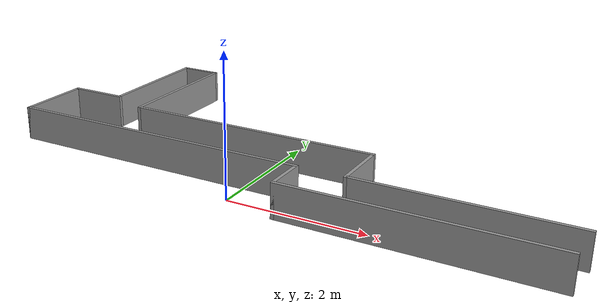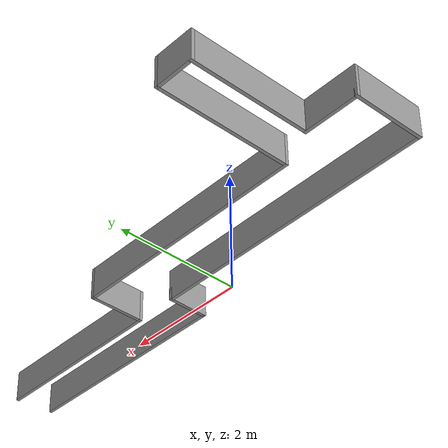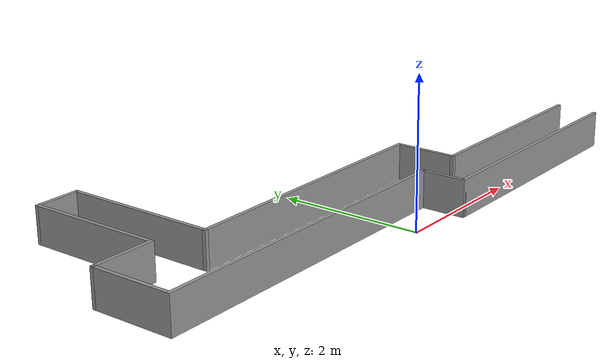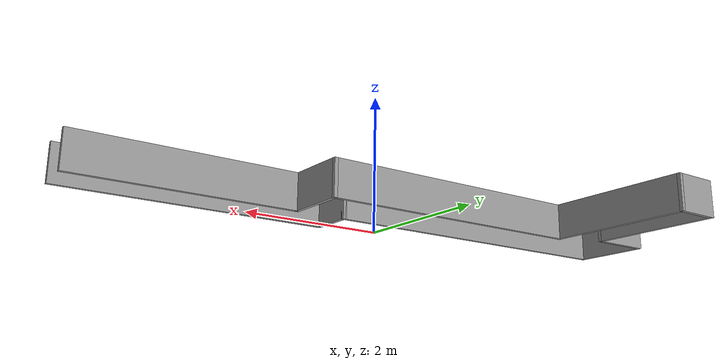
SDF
<?xml version='1.0'?>
<sdf version='1.7'>
  <model name='TubeWorld1'>
    <pose>0.316 1.602 0 0 -0 0</pose>
    <link name='Wall_0'>
      <collision name='Wall_0_Collision'>
        <geometry>
          <box>
            <size>3 0.05 0.5</size>
          </box>
        </geometry>
        <pose>0 0 0.25 0 -0 0</pose>
      </collision>
      <visual name='Wall_0_Visual'>
        <pose>0 0 0.25 0 -0 0</pose>
        <geometry>
          <box>
            <size>3 0.05 0.5</size>
          </box>
        </geometry>
        <material>
          <script>
            <uri>file://media/materials/scripts/gazebo.material</uri>
            <name>Gazebo/Grey</name>
          </script>
          <ambient>1 1 1 1</ambient>
        </material>
        <meta>
          <layer>0</layer>
        </meta>
      </visual>
      <pose>2.65 -1.175 0 0 -0 3.14159</pose>
    </link>
    <link name='Wall_10'>
      <collision name='Wall_10_Collision'>
        <geometry>
          <box>
            <size>0.9 0.05 0.5</size>
          </box>
        </geometry>
        <pose>0 0 0.25 0 -0 0</pose>
      </collision>
      <visual name='Wall_10_Visual'>
        <pose>0 0 0.25 0 -0 0</pose>
        <geometry>
          <box>
            <size>0.9 0.05 0.5</size>
          </box>
        </geometry>
        <material>
          <script>
            <uri>file://media/materials/scripts/gazebo.material</uri>
            <name>Gazebo/Grey</name>
          </script>
          <ambient>1 1 1 1</ambient>
        </material>
        <meta>
          <layer>0</layer>
        </meta>
      </visual>
      <pose>-3.7 -0.075 0 0 -0 3.14159</pose>
    </link>
    <link name='Wall_11'>
      <collision name='Wall_11_Collision'>
        <geometry>
          <box>
            <size>1.15 0.05 0.5</size>
          </box>
        </geometry>
        <pose>0 0 0.25 0 -0 0</pose>
      </collision>
      <visual name='Wall_11_Visual'>
        <pose>0 0 0.25 0 -0 0</pose>
        <geometry>
          <box>
            <size>1.15 0.05 0.5</size>
          </box>
        </geometry>
        <material>
          <script>
            <uri>file://media/materials/scripts/gazebo.material</uri>
            <name>Gazebo/Grey</name>
          </script>
          <ambient>1 1 1 1</ambient>
        </material>
        <meta>
          <layer>0</layer>
        </meta>
      </visual>
      <pose>-4.125 -0.625 0 0 -0 -1.5708</pose>
    </link>
    <link name='Wall_12'>
      <collision name='Wall_12_Collision'>
        <geometry>
          <box>
            <size>4.65 0.05 0.5</size>
          </box>
        </geometry>
        <pose>0 0 0.25 0 -0 0</pose>
      </collision>
      <visual name='Wall_12_Visual'>
        <pose>0 0 0.25 0 -0 0</pose>
        <geometry>
          <box>
            <size>4.65 0.05 0.5</size>
          </box>
        </geometry>
        <material>
          <script>
            <uri>file://media/materials/scripts/gazebo.material</uri>
            <name>Gazebo/Grey</name>
          </script>
          <ambient>1 1 1 1</ambient>
        </material>
        <meta>
          <layer>0</layer>
        </meta>
      </visual>
      <pose>-1.825 -1.175 0 0 -0 0</pose>
    </link>
    <link name='Wall_13'>
      <collision name='Wall_13_Collision'>
        <geometry>
          <box>
            <size>0.65 0.05 0.5</size>
          </box>
        </geometry>
        <pose>0 0 0.25 0 -0 0</pose>
      </collision>
      <visual name='Wall_13_Visual'>
        <pose>0 0 0.25 0 -0 0</pose>
        <geometry>
          <box>
            <size>0.65 0.05 0.5</size>
          </box>
        </geometry>
        <material>
          <script>
            <uri>file://media/materials/scripts/gazebo.material</uri>
            <name>Gazebo/Grey</name>
          </script>
          <ambient>1 1 1 1</ambient>
        </material>
        <meta>
          <layer>0</layer>
        </meta>
      </visual>
      <pose>0.475 -1.475 0 0 -0 -1.5708</pose>
    </link>
    <link name='Wall_14'>
      <collision name='Wall_14_Collision'>
        <geometry>
          <box>
            <size>3.65 0.05 0.5</size>
          </box>
        </geometry>
        <pose>0 0 0.25 0 -0 0</pose>
      </collision>
      <visual name='Wall_14_Visual'>
        <pose>0 0 0.25 0 -0 0</pose>
        <geometry>
          <box>
            <size>3.65 0.05 0.5</size>
          </box>
        </geometry>
        <material>
          <script>
            <uri>file://media/materials/scripts/gazebo.material</uri>
            <name>Gazebo/Grey</name>
          </script>
          <ambient>1 1 1 1</ambient>
        </material>
        <meta>
          <layer>0</layer>
        </meta>
      </visual>
      <pose>2.275 -1.775 0 0 -0 0</pose>
    </link>
    <link name='Wall_5'>
      <collision name='Wall_5_Collision'>
        <geometry>
          <box>
            <size>0.9 0.05 0.5</size>
          </box>
        </geometry>
        <pose>0 0 0.25 0 -0 0</pose>
      </collision>
      <visual name='Wall_5_Visual'>
        <pose>0 0 0.25 0 -0 0</pose>
        <geometry>
          <box>
            <size>0.9 0.05 0.5</size>
          </box>
        </geometry>
        <material>
          <script>
            <uri>file://media/materials/scripts/gazebo.material</uri>
            <name>Gazebo/Grey</name>
          </script>
          <ambient>1 1 1 1</ambient>
        </material>
        <meta>
          <layer>0</layer>
        </meta>
      </visual>
      <pose>1.175 -0.75 0 0 -0 1.5708</pose>
    </link>
    <link name='Wall_6'>
      <collision name='Wall_6_Collision'>
        <geometry>
          <box>
            <size>3.9 0.05 0.5</size>
          </box>
        </geometry>
        <pose>0 0 0.25 0 -0 0</pose>
      </collision>
      <visual name='Wall_6_Visual'>
        <pose>0 0 0.25 0 -0 0</pose>
        <geometry>
          <box>
            <size>3.9 0.05 0.5</size>
          </box>
        </geometry>
        <material>
          <script>
            <uri>file://media/materials/scripts/gazebo.material</uri>
            <name>Gazebo/Grey</name>
          </script>
          <ambient>1 1 1 1</ambient>
        </material>
        <meta>
          <layer>0</layer>
        </meta>
      </visual>
      <pose>-0.75 -0.325 0 0 -0 3.14159</pose>
    </link>
    <link name='Wall_7'>
      <collision name='Wall_7_Collision'>
        <geometry>
          <box>
            <size>2.15 0.05 0.5</size>
          </box>
        </geometry>
        <pose>0 0 0.25 0 -0 0</pose>
      </collision>
      <visual name='Wall_7_Visual'>
        <pose>0 0 0.25 0 -0 0</pose>
        <geometry>
          <box>
            <size>2.15 0.05 0.5</size>
          </box>
        </geometry>
        <material>
          <script>
            <uri>file://media/materials/scripts/gazebo.material</uri>
            <name>Gazebo/Grey</name>
          </script>
          <ambient>1 1 1 1</ambient>
        </material>
        <meta>
          <layer>0</layer>
        </meta>
      </visual>
      <pose>-2.675 0.725 0 0 -0 1.5708</pose>
    </link>
    <link name='Wall_8'>
      <collision name='Wall_8_Collision'>
        <geometry>
          <box>
            <size>0.65 0.05 0.5</size>
          </box>
        </geometry>
        <pose>0 0 0.25 0 -0 0</pose>
      </collision>
      <visual name='Wall_8_Visual'>
        <pose>0 0 0.25 0 -0 0</pose>
        <geometry>
          <box>
            <size>0.65 0.05 0.5</size>
          </box>
        </geometry>
        <material>
          <script>
            <uri>file://media/materials/scripts/gazebo.material</uri>
            <name>Gazebo/Grey</name>
          </script>
          <ambient>1 1 1 1</ambient>
        </material>
        <meta>
          <layer>0</layer>
        </meta>
      </visual>
      <pose>-2.975 1.775 0 0 -0 3.14159</pose>
    </link>
    <link name='Wall_9'>
      <collision name='Wall_9_Collision'>
        <geometry>
          <box>
            <size>1.9 0.05 0.5</size>
          </box>
        </geometry>
        <pose>0 0 0.25 0 -0 0</pose>
      </collision>
      <visual name='Wall_9_Visual'>
        <pose>0 0 0.25 0 -0 0</pose>
        <geometry>
          <box>
            <size>1.9 0.05 0.5</size>
          </box>
        </geometry>
        <material>
          <script>
            <uri>file://media/materials/scripts/gazebo.material</uri>
            <name>Gazebo/Grey</name>
          </script>
          <ambient>1 1 1 1</ambient>
        </material>
        <meta>
          <layer>0</layer>
        </meta>
      </visual>
      <pose>-3.275 0.85 0 0 -0 -1.5708</pose>
    </link>
    <static>1</static>
  </model>
</sdf>
